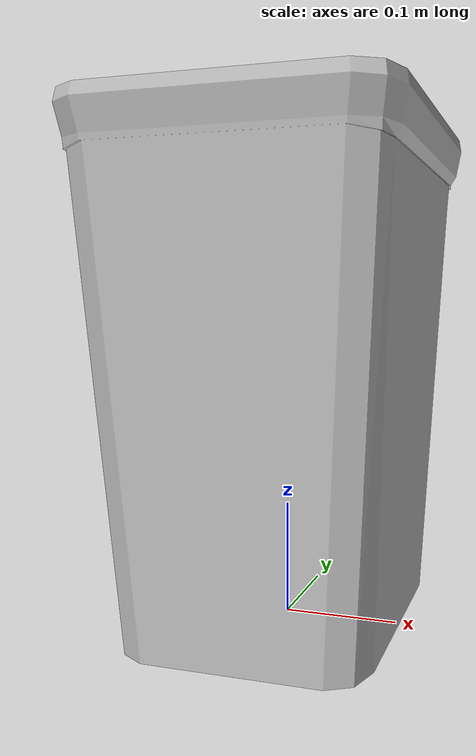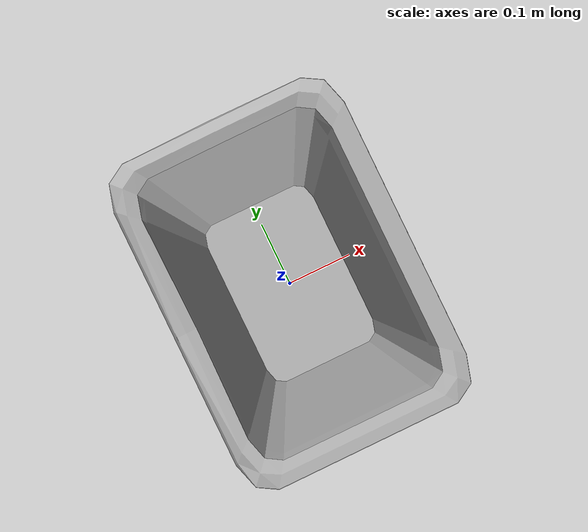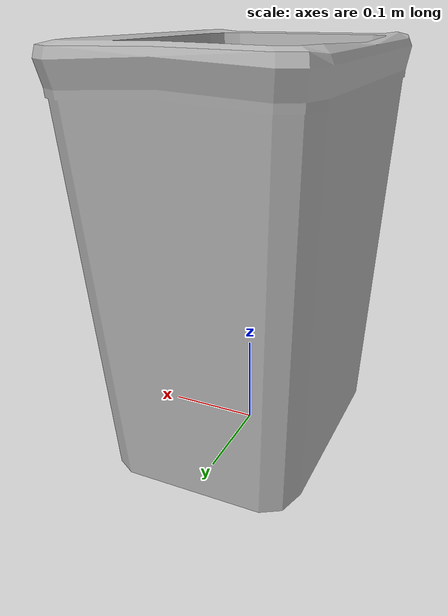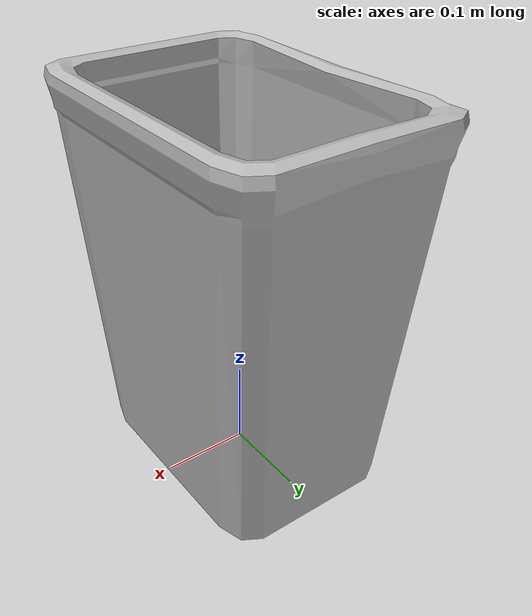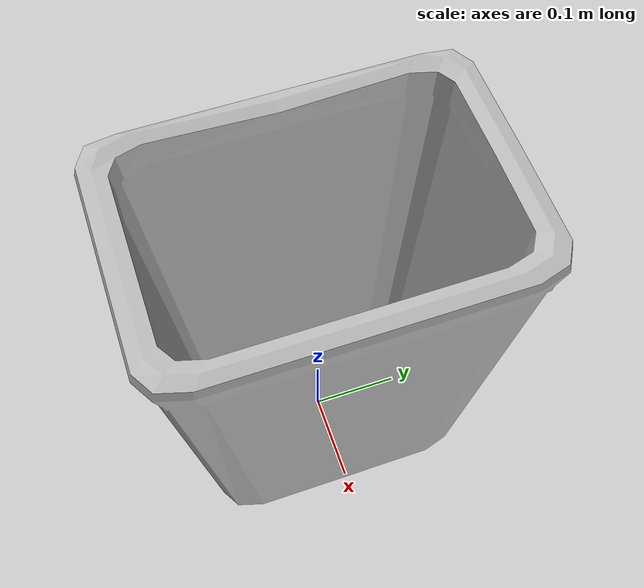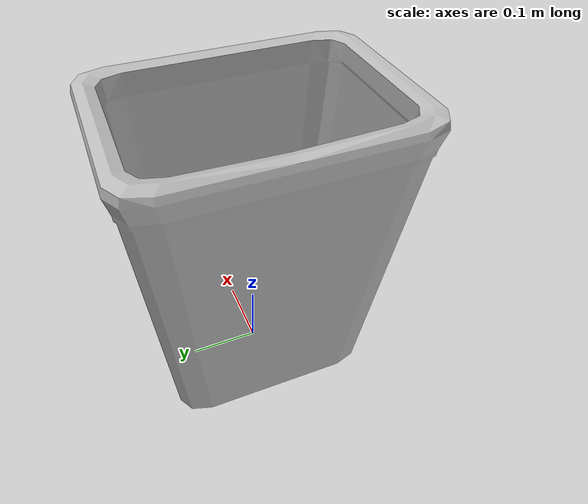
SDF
<?xml version="1.0"?>

<sdf version="1.6">
  <model name='TrashBin'>
    <static>true</static>
    <link name="body">
      <pose>0 0 0 0 0 0</pose>

        <visual name="visual">
          <geometry>
            <mesh><uri>model://TrashBin/meshes/TrashBin.obj</uri></mesh>
          </geometry>
        </visual>

        <collision name="collision">
          <geometry>
            <mesh><uri>model://TrashBin/meshes/TrashBin.obj</uri></mesh>
          </geometry>
        </collision>

    </link>
  </model>
</sdf>
